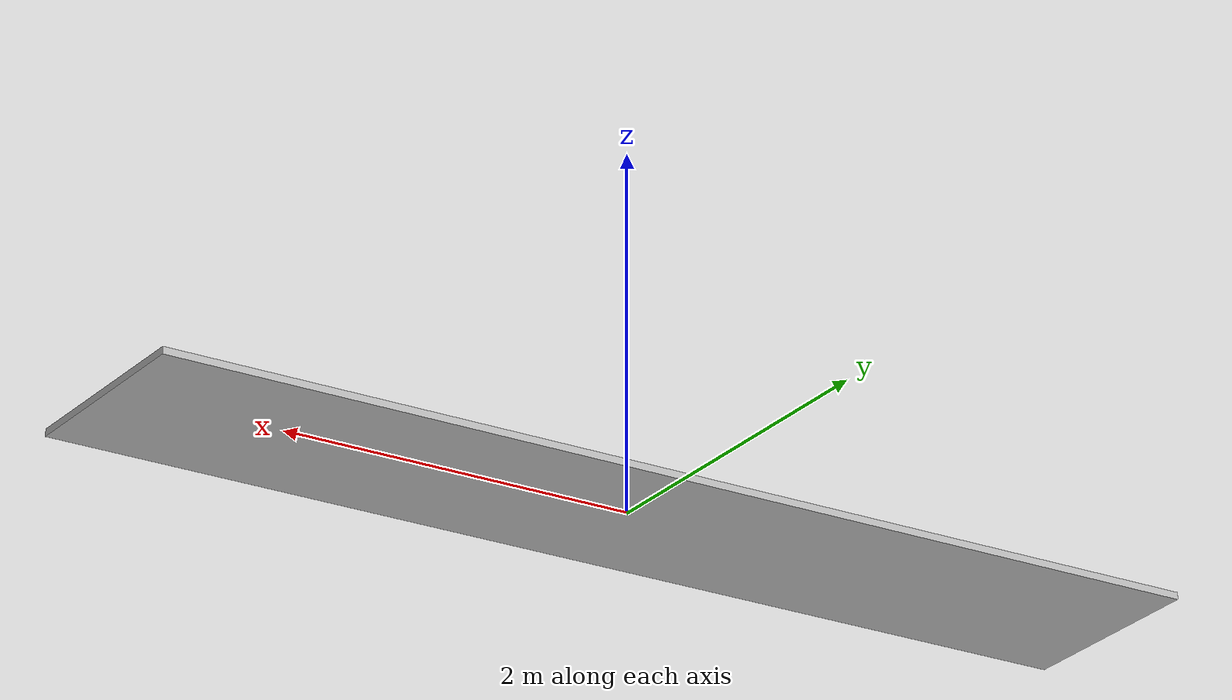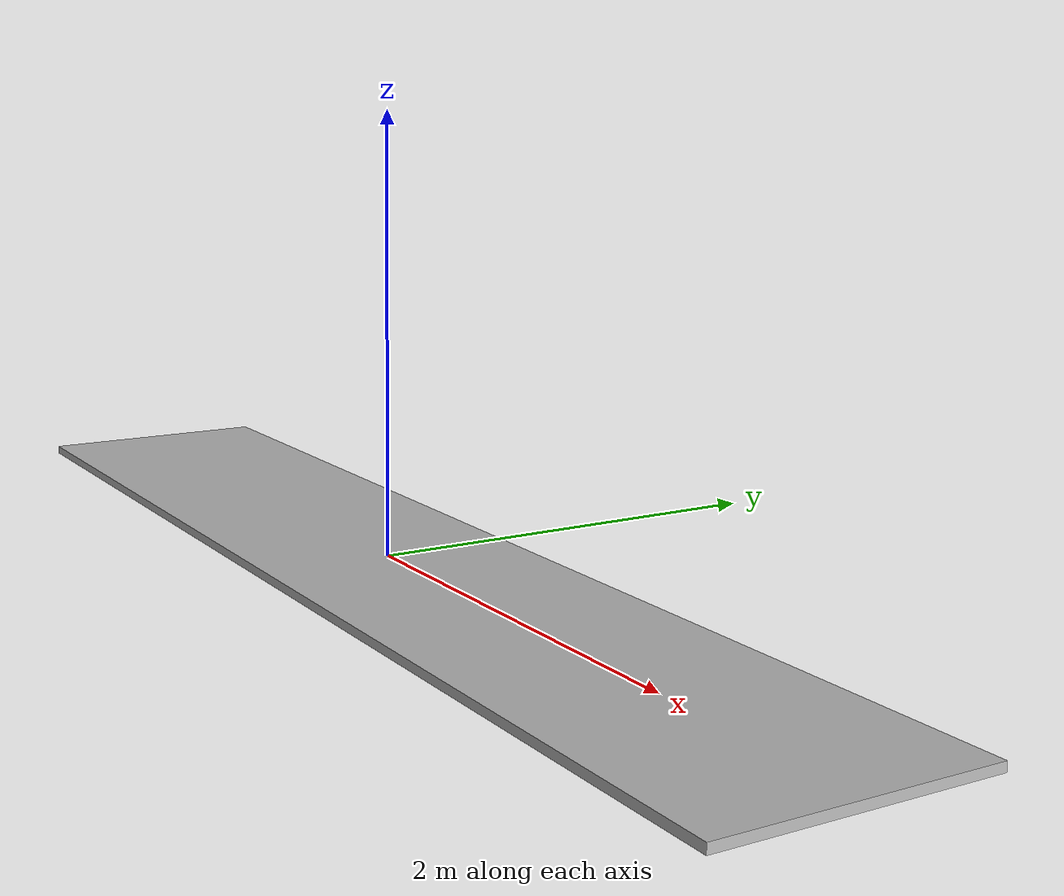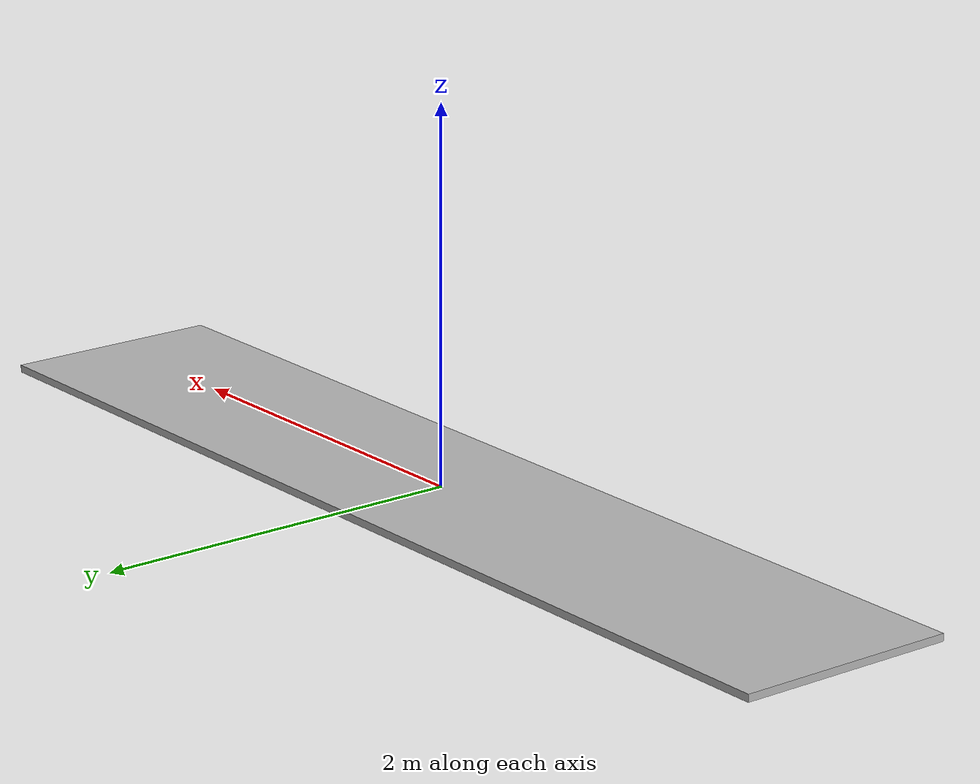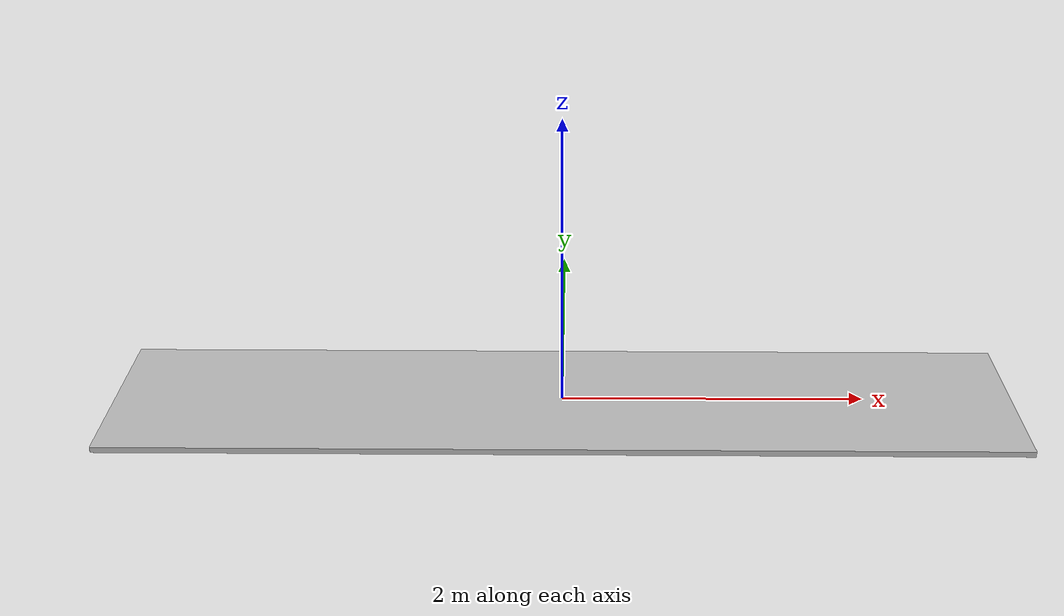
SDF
<?xml version="1.0" ?>
<sdf version="1.5">
  <model name="floor_6m2">
    <static>true</static>
    <link name="link">
      <pose>0 0 -0.02 0 0 0</pose>
      <collision name="collision">
        <geometry>
          <box>
            <size>6.0 1.2 0.04</size>
          </box>
        </geometry>
      </collision>
      <visual name="visual">
        <geometry>
          <box>
            <size>6.0 1.2 0.04</size>
          </box>
        </geometry>
        <material>
          <script>
            <uri>model://floor_6m2/materials/scripts</uri>
            <uri>model://floor_6m2/materials/textures</uri>
            <name>vrc/floor_6m2</name>
          </script>
        </material>
      </visual>
    </link>
  </model>
</sdf>
